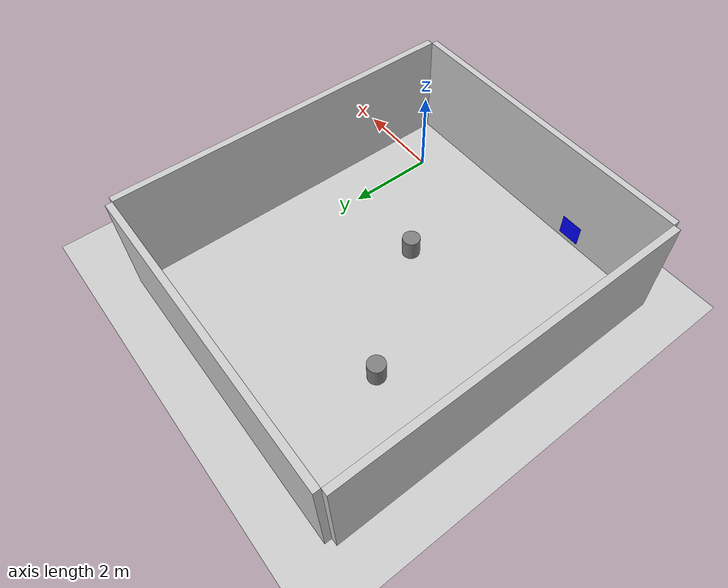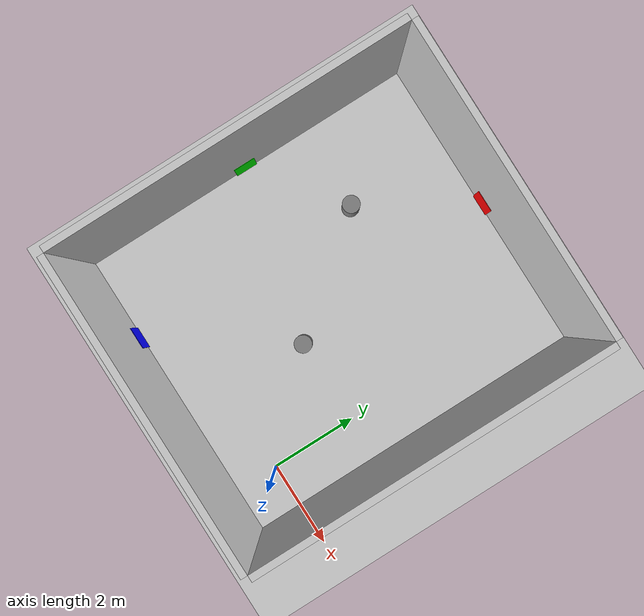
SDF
<sdf version="1.7">
 <world name="default">
  <physics name="1ms" type="ignored">
   <max_step_size>0.004</max_step_size>
   <real_time_factor>1</real_time_factor>
   <real_time_update_rate>200</real_time_update_rate>
  </physics>
  <plugin name="gz::sim::systems::Physics" filename="gz-sim-physics-system"/>
  <plugin name="gz::sim::systems::UserCommands" filename="gz-sim-user-commands-system"/>
  <plugin name="gz::sim::systems::SceneBroadcaster" filename="gz-sim-scene-broadcaster-system"/>
  <plugin name="gz::sim::systems::Contact" filename="gz-sim-contact-system"/>
  <light name="sun" type="directional">
   <cast_shadows>0</cast_shadows>
   <pose>0 0 10 0 0 0</pose>
   <diffuse>0.8 0.8 0.8 1</diffuse>
   <specular>0.2 0.2 0.2 1</specular>
   <attenuation>
    <range>1000</range>
    <constant>0.9</constant>
    <linear>0.01</linear>
    <quadratic>0.001</quadratic>
   </attenuation>
   <direction>-0.5 0.1 -0.9</direction>
  </light>
  <gravity>0 0 -9.8</gravity>
  <magnetic_field>6e-06 2.3e-05 -4.2e-05</magnetic_field>
  <atmosphere type="adiabatic"/>
  <scene><ambient>0.4 0.4 0.4 1</ambient><background>0.7 0.7 0.7 1</background><shadows>0</shadows></scene>
  <model name="ground_plane">
   <static>true</static>
   <link name="link">
    <collision name="collision">
     <geometry><plane><normal>0 0 1</normal><size>100 100</size></plane></geometry>
    </collision>
    <visual name="visual">
     <geometry><plane><normal>0 0 1</normal><size>100 100</size></plane></geometry>
     <material><ambient>0.8 0.8 0.8 1</ambient><diffuse>0.8 0.8 0.8 1</diffuse></material>
    </visual>
   </link>
  </model>
  <model name="room">
   <static>true</static>
   <link name="wall_bottom">
    <pose>-2.5 -1.075 1.25 0 0 0</pose>
    <visual name="visual">
     <geometry><box><size>7 0.15 2.5</size></box></geometry>
     <material><ambient>0.7 0.7 0.7 1</ambient><diffuse>0.8 0.8 0.8 1</diffuse></material>
    </visual>
    <collision name="collision"><geometry><box><size>7 0.15 2.5</size></box></geometry></collision>
   </link>
   <link name="wall_top">
    <pose>-2.5 7.075 1.25 0 0 0</pose>
    <visual name="visual">
     <geometry><box><size>7 0.15 2.5</size></box></geometry>
     <material><ambient>0.7 0.7 0.7 1</ambient><diffuse>0.8 0.8 0.8 1</diffuse></material>
    </visual>
    <collision name="collision"><geometry><box><size>7 0.15 2.5</size></box></geometry></collision>
   </link>
   <link name="wall_right">
    <pose>1.075 3 1.25 0 0 0</pose>
    <visual name="visual">
     <geometry><box><size>0.15 8 2.5</size></box></geometry>
     <material><ambient>0.7 0.7 0.7 1</ambient><diffuse>0.8 0.8 0.8 1</diffuse></material>
    </visual>
    <collision name="collision"><geometry><box><size>0.15 8 2.5</size></box></geometry></collision>
   </link>
   <link name="wall_left">
    <pose>-6.075 3 1.25 0 0 0</pose>
    <visual name="visual">
     <geometry><box><size>0.15 8 2.5</size></box></geometry>
     <material><ambient>0.7 0.7 0.7 1</ambient><diffuse>0.8 0.8 0.8 1</diffuse></material>
    </visual>
    <collision name="collision"><geometry><box><size>0.15 8 2.5</size></box></geometry></collision>
   </link>
  </model>
  <model name="target_green">
   <static>true</static>
   <pose>-5.9 3.0 0.5 0 0 0</pose>
   <link name="link">
    <visual name="visual">
     <geometry><box><size>0.01 0.5 0.5</size></box></geometry>
     <material><ambient>0 1 0 1</ambient><diffuse>0 1 0 1</diffuse></material>
    </visual>
    <collision name="collision"><geometry><box><size>0.01 0.5 0.5</size></box></geometry></collision>
   </link>
  </model>
  <model name="target_red">
   <static>true</static>
   <pose>-2.5 6.9 0.5 0 0 1.5708</pose>
   <link name="link">
    <visual name="visual">
     <geometry><box><size>0.01 0.5 0.5</size></box></geometry>
     <material><ambient>1 0 0 1</ambient><diffuse>1 0 0 1</diffuse></material>
    </visual>
    <collision name="collision"><geometry><box><size>0.01 0.5 0.5</size></box></geometry></collision>
   </link>
  </model>
  <model name="target_blue">
   <static>true</static>
   <pose>-4.0 -0.9 0.5 0 0 1.5708</pose>
   <link name="link">
    <visual name="visual">
     <geometry><box><size>0.01 0.5 0.5</size></box></geometry>
     <material><ambient>0 0 1 1</ambient><diffuse>0 0 1 1</diffuse></material>
    </visual>
    <collision name="collision"><geometry><box><size>0.01 0.5 0.5</size></box></geometry></collision>
   </link>
  </model>
  <model name="obstacle_1">
   <static>true</static>
   <pose>-2.0 2.0 0.25 0 0 0</pose>
   <link name="link">
    <visual name="visual">
     <geometry><cylinder><radius>0.2</radius><length>0.5</length></cylinder></geometry>
     <material><ambient>0.4 0.4 0.4 1</ambient><diffuse>0.5 0.5 0.5 1</diffuse></material>
    </visual>
    <collision name="collision">
     <geometry><cylinder><radius>0.2</radius><length>0.5</length></cylinder></geometry>
    </collision>
   </link>
  </model>
  <model name="obstacle_2">
   <static>true</static>
   <pose>-4.0 4.5 0.25 0 0 0</pose>
   <link name="link">
    <visual name="visual">
     <geometry><cylinder><radius>0.2</radius><length>0.5</length></cylinder></geometry>
     <material><ambient>0.4 0.4 0.4 1</ambient><diffuse>0.5 0.5 0.5 1</diffuse></material>
    </visual>
    <collision name="collision">
     <geometry><cylinder><radius>0.2</radius><length>0.5</length></cylinder></geometry>
    </collision>
   </link>
  </model>
 </world>
</sdf>
